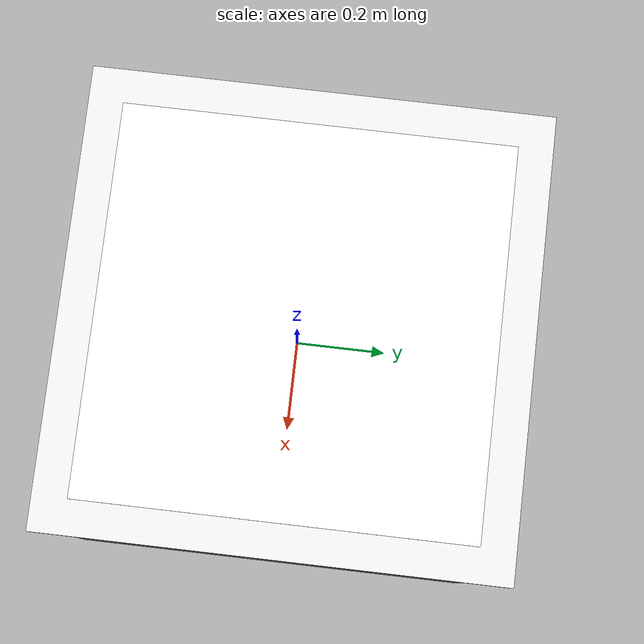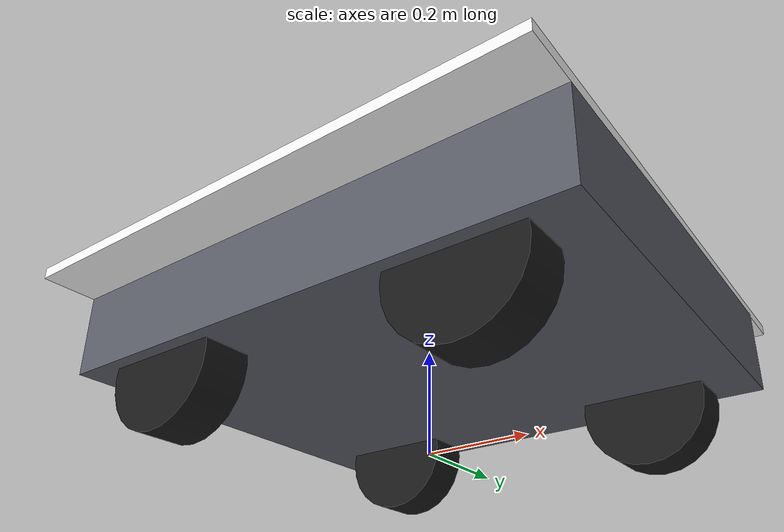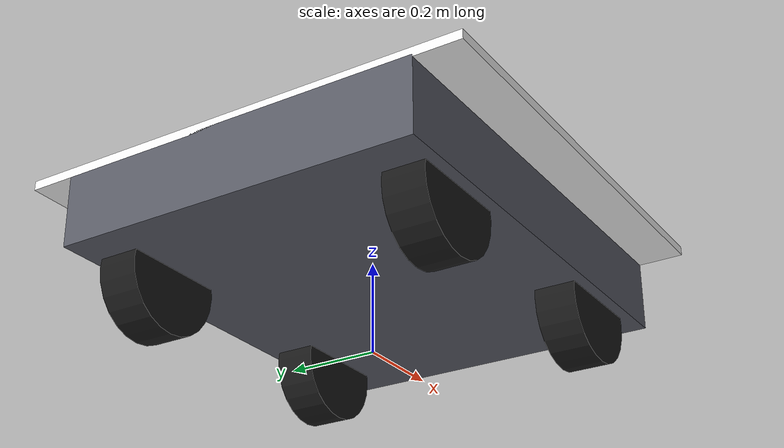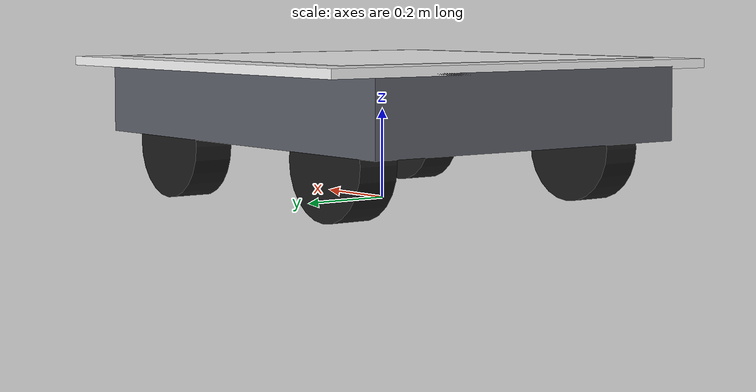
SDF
<?xml version="1.0"?>
<sdf version="1.9">
  <!-- Generated by scripts/generate_precision_landing.py - do not edit by hand. -->
  <model name="aruco_rover_2">
    <link name="base_link">
      <inertial>
        <mass>20</mass>
        <inertia>
          <ixx>1.2</ixx><ixy>0</ixy><ixz>0</ixz>
          <iyy>1.6</iyy><iyz>0</iyz><izz>2.0</izz>
        </inertia>
        <pose>0 0 0.2 0 0 0</pose>
      </inertial>

      <visual name='chassis'>
        <pose>0 0 0.22 0 0 0</pose>
        <geometry>
          <box><size>1.00 0.80 0.16</size></box>
        </geometry>
        <material>
          <ambient>0.15 0.15 0.17 1</ambient>
          <diffuse>0.35 0.36 0.40 1</diffuse>
          <specular>0.10 0.10 0.10 1</specular>
        </material>
      </visual>
        <visual name='wheel_0'>
          <pose>0.3 0.33 0.12 1.5708 0 0</pose>
          <geometry>
            <cylinder><radius>0.12</radius><length>0.09</length></cylinder>
          </geometry>
          <material>
            <ambient>0.02 0.02 0.02 1</ambient>
            <diffuse>0.10 0.10 0.10 1</diffuse>
            <specular>0.02 0.02 0.02 1</specular>
          </material>
        </visual>
        <visual name='wheel_1'>
          <pose>0.3 -0.33 0.12 1.5708 0 0</pose>
          <geometry>
            <cylinder><radius>0.12</radius><length>0.09</length></cylinder>
          </geometry>
          <material>
            <ambient>0.02 0.02 0.02 1</ambient>
            <diffuse>0.10 0.10 0.10 1</diffuse>
            <specular>0.02 0.02 0.02 1</specular>
          </material>
        </visual>
        <visual name='wheel_2'>
          <pose>-0.3 0.33 0.12 1.5708 0 0</pose>
          <geometry>
            <cylinder><radius>0.12</radius><length>0.09</length></cylinder>
          </geometry>
          <material>
            <ambient>0.02 0.02 0.02 1</ambient>
            <diffuse>0.10 0.10 0.10 1</diffuse>
            <specular>0.02 0.02 0.02 1</specular>
          </material>
        </visual>
        <visual name='wheel_3'>
          <pose>-0.3 -0.33 0.12 1.5708 0 0</pose>
          <geometry>
            <cylinder><radius>0.12</radius><length>0.09</length></cylinder>
          </geometry>
          <material>
            <ambient>0.02 0.02 0.02 1</ambient>
            <diffuse>0.10 0.10 0.10 1</diffuse>
            <specular>0.02 0.02 0.02 1</specular>
          </material>
        </visual>

      <!-- White plate the marker is printed on; gives the marker its quiet
           zone in 3D as well as in the texture. -->
      <visual name='pad'>
        <pose>0 0 0.305 0 0 0</pose>
        <geometry>
          <box><size>1.0 1.0 0.02</size></box>
        </geometry>
        <material>
          <ambient>0.85 0.85 0.85 1</ambient>
          <diffuse>0.95 0.95 0.95 1</diffuse>
          <specular>0.05 0.05 0.05 1</specular>
        </material>
      </visual>

      <!-- The marker itself, a hair above the plate so it never z-fights. -->
      <visual name='aruco_marker'>
        <pose>0 0 0.3165 0 0 0</pose>
        <geometry>
          <box><size>0.85 0.85 0.001</size></box>
        </geometry>
        <material>
          <ambient>1 1 1 1</ambient>
          <diffuse>1 1 1 1</diffuse>
          <specular>0 0 0 1</specular>
          <pbr>
            <metal>
              <albedo_map>model://aruco_rover_2/materials/textures/aruco_2.png</albedo_map>
              <metalness>0</metalness>
              <roughness>1</roughness>
            </metal>
          </pbr>
        </material>
      </visual>

      <!-- Single box collision covering chassis + pad, so a drone can rest on
           the pad surface at z = 0.315. -->
      <collision name='collision'>
        <pose>0 0 0.19 0 0 0</pose>
        <geometry>
          <box><size>1.00 0.80 0.25</size></box>
        </geometry>
        <surface>
          <friction>
            <ode><mu>100</mu><mu2>50</mu2></ode>
          </friction>
        </surface>
      </collision>
    </link>

    <plugin filename="gz-sim-velocity-control-system"
            name="gz::sim::systems::VelocityControl">
      <initial_linear>0.3 0 0</initial_linear>
      <initial_angular>0 0 0.100000</initial_angular>
    </plugin>

    <plugin filename="gz-sim-odometry-publisher-system"
            name="gz::sim::systems::OdometryPublisher">
      <odom_frame>world</odom_frame>
      <robot_base_frame>aruco_rover_2</robot_base_frame>
      <odom_publish_frequency>20</odom_publish_frequency>
      <odom_topic>model/aruco_rover_2/odometry</odom_topic>
    </plugin>
  </model>
</sdf>
